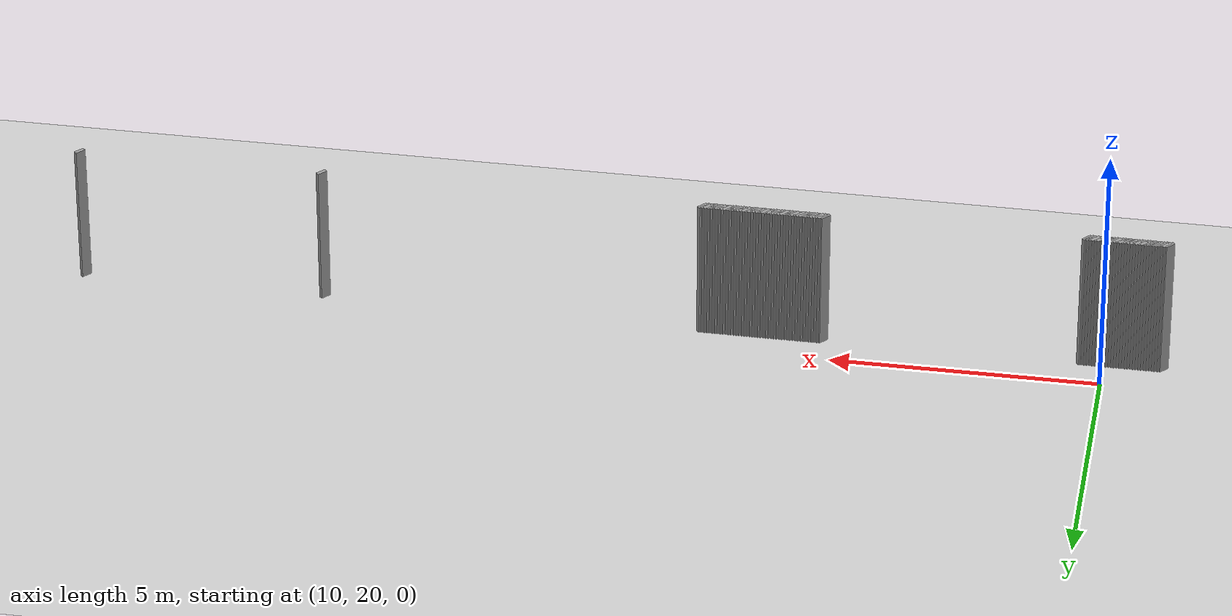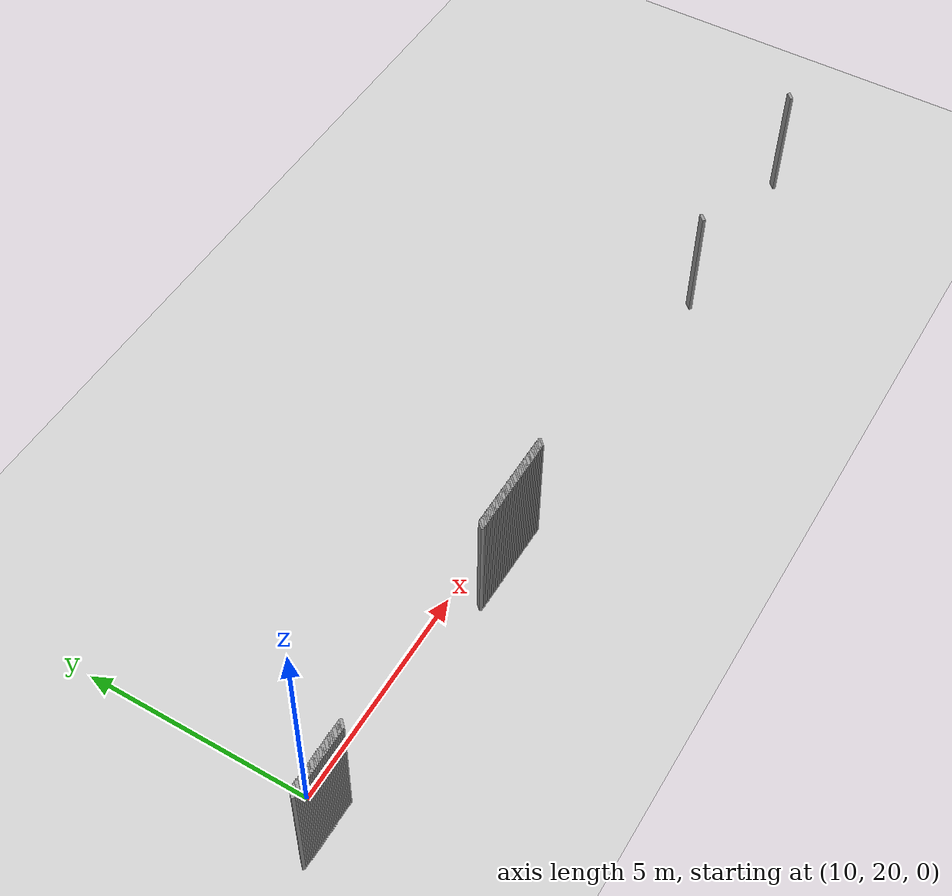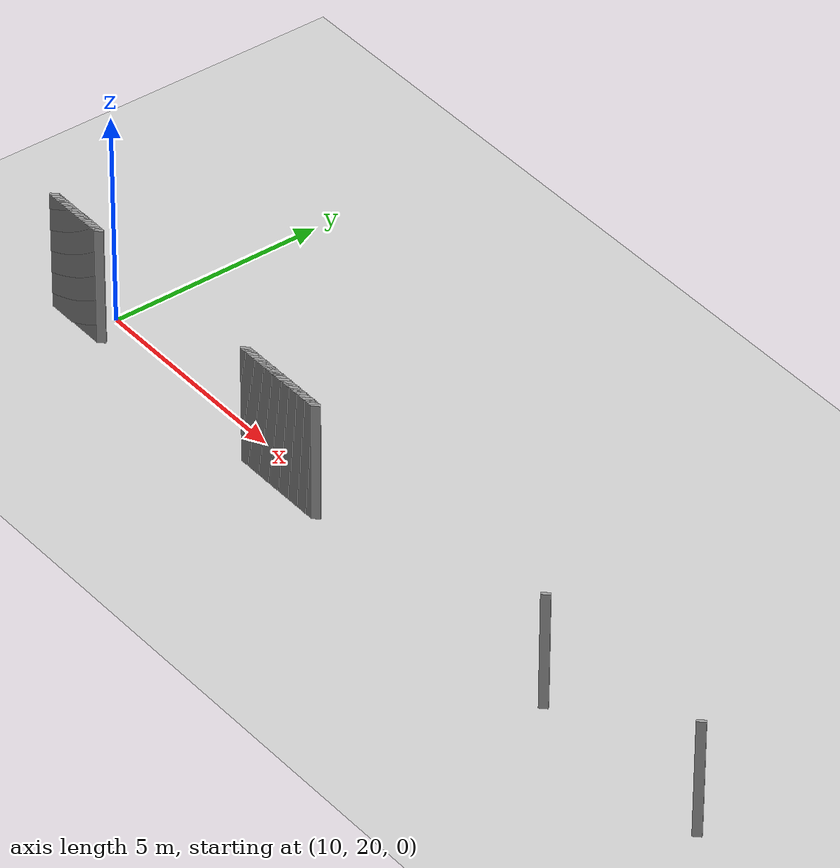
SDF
<sdf version="1.5">
 <world name="default">
  <include><uri>model://ground_plane</uri></include>
  <include><uri>model://sun</uri></include>
  <model name="grey_wall_317">
   <static>1</static>
   <link name="link">
    <pose>15.2 19.4  1.4 0 0 -0.785398163397</pose>
    <collision name="collision"><geometry><box><size>0.0707106781187 .2  2.8</size></box></geometry></collision>
    <visual name="visual">
     <cast_shadows>0</cast_shadows>
     <geometry><box><size>0.0707106781187 .2  2.8</size></box></geometry>
     <material>
      <script>
       <uri>model://grey_wall/materials/scripts</uri>
       <uri>model://grey_wall/materials/textures</uri>
       <name>vrc/grey_wall</name>
      </script>
     </material>
    </visual>
   </link>
  </model>
  <model name="grey_wall_318">
   <static>1</static>
   <link name="link">
    <pose>15.25 19.4  1.4 0 0 -0.785398163397</pose>
    <collision name="collision"><geometry><box><size>0.0707106781187 .2  2.8</size></box></geometry></collision>
    <visual name="visual">
     <cast_shadows>0</cast_shadows>
     <geometry><box><size>0.0707106781187 .2  2.8</size></box></geometry>
     <material>
      <script>
       <uri>model://grey_wall/materials/scripts</uri>
       <uri>model://grey_wall/materials/textures</uri>
       <name>vrc/grey_wall</name>
      </script>
     </material>
    </visual>
   </link>
  </model>
  <model name="grey_wall_319">
   <static>1</static>
   <link name="link">
    <pose>15.3 19.4  1.4 0 0 -0.785398163397</pose>
    <collision name="collision"><geometry><box><size>0.0707106781187 .2  2.8</size></box></geometry></collision>
    <visual name="visual">
     <cast_shadows>0</cast_shadows>
     <geometry><box><size>0.0707106781187 .2  2.8</size></box></geometry>
     <material>
      <script>
       <uri>model://grey_wall/materials/scripts</uri>
       <uri>model://grey_wall/materials/textures</uri>
       <name>vrc/grey_wall</name>
      </script>
     </material>
    </visual>
   </link>
  </model>
  <model name="grey_wall_320">
   <static>1</static>
   <link name="link">
    <pose>15.35 19.4  1.4 0 0 -0.785398163397</pose>
    <collision name="collision"><geometry><box><size>0.0707106781187 .2  2.8</size></box></geometry></collision>
    <visual name="visual">
     <cast_shadows>0</cast_shadows>
     <geometry><box><size>0.0707106781187 .2  2.8</size></box></geometry>
     <material>
      <script>
       <uri>model://grey_wall/materials/scripts</uri>
       <uri>model://grey_wall/materials/textures</uri>
       <name>vrc/grey_wall</name>
      </script>
     </material>
    </visual>
   </link>
  </model>
  <model name="grey_wall_321">
   <static>1</static>
   <link name="link">
    <pose>15.4 19.4  1.4 0 0 -0.785398163397</pose>
    <collision name="collision"><geometry><box><size>0.0707106781187 .2  2.8</size></box></geometry></collision>
    <visual name="visual">
     <cast_shadows>0</cast_shadows>
     <geometry><box><size>0.0707106781187 .2  2.8</size></box></geometry>
     <material>
      <script>
       <uri>model://grey_wall/materials/scripts</uri>
       <uri>model://grey_wall/materials/textures</uri>
       <name>vrc/grey_wall</name>
      </script>
     </material>
    </visual>
   </link>
  </model>
  <model name="grey_wall_322">
   <static>1</static>
   <link name="link">
    <pose>15.45 19.4  1.4 0 0 -0.785398163397</pose>
    <collision name="collision"><geometry><box><size>0.0707106781187 .2  2.8</size></box></geometry></collision>
    <visual name="visual">
     <cast_shadows>0</cast_shadows>
     <geometry><box><size>0.0707106781187 .2  2.8</size></box></geometry>
     <material>
      <script>
       <uri>model://grey_wall/materials/scripts</uri>
       <uri>model://grey_wall/materials/textures</uri>
       <name>vrc/grey_wall</name>
      </script>
     </material>
    </visual>
   </link>
  </model>
  <model name="grey_wall_323">
   <static>1</static>
   <link name="link">
    <pose>15.5 19.4  1.4 0 0 -0.785398163397</pose>
    <collision name="collision"><geometry><box><size>0.0707106781187 .2  2.8</size></box></geometry></collision>
    <visual name="visual">
     <cast_shadows>0</cast_shadows>
     <geometry><box><size>0.0707106781187 .2  2.8</size></box></geometry>
     <material>
      <script>
       <uri>model://grey_wall/materials/scripts</uri>
       <uri>model://grey_wall/materials/textures</uri>
       <name>vrc/grey_wall</name>
      </script>
     </material>
    </visual>
   </link>
  </model>
  <model name="grey_wall_324">
   <static>1</static>
   <link name="link">
    <pose>15.55 19.4  1.4 0 0 -0.785398163397</pose>
    <collision name="collision"><geometry><box><size>0.0707106781187 .2  2.8</size></box></geometry></collision>
    <visual name="visual">
     <cast_shadows>0</cast_shadows>
     <geometry><box><size>0.0707106781187 .2  2.8</size></box></geometry>
     <material>
      <script>
       <uri>model://grey_wall/materials/scripts</uri>
       <uri>model://grey_wall/materials/textures</uri>
       <name>vrc/grey_wall</name>
      </script>
     </material>
    </visual>
   </link>
  </model>
  <model name="grey_wall_325">
   <static>1</static>
   <link name="link">
    <pose>15.6 19.4  1.4 0 0 -0.785398163397</pose>
    <collision name="collision"><geometry><box><size>0.0707106781187 .2  2.8</size></box></geometry></collision>
    <visual name="visual">
     <cast_shadows>0</cast_shadows>
     <geometry><box><size>0.0707106781187 .2  2.8</size></box></geometry>
     <material>
      <script>
       <uri>model://grey_wall/materials/scripts</uri>
       <uri>model://grey_wall/materials/textures</uri>
       <name>vrc/grey_wall</name>
      </script>
     </material>
    </visual>
   </link>
  </model>
  <model name="grey_wall_326">
   <static>1</static>
   <link name="link">
    <pose>15.65 19.4  1.4 0 0 -0.785398163397</pose>
    <collision name="collision"><geometry><box><size>0.0707106781187 .2  2.8</size></box></geometry></collision>
    <visual name="visual">
     <cast_shadows>0</cast_shadows>
     <geometry><box><size>0.0707106781187 .2  2.8</size></box></geometry>
     <material>
      <script>
       <uri>model://grey_wall/materials/scripts</uri>
       <uri>model://grey_wall/materials/textures</uri>
       <name>vrc/grey_wall</name>
      </script>
     </material>
    </visual>
   </link>
  </model>
  <model name="grey_wall_327">
   <static>1</static>
   <link name="link">
    <pose>15.7 19.4  1.4 0 0 -0.785398163397</pose>
    <collision name="collision"><geometry><box><size>0.0707106781187 .2  2.8</size></box></geometry></collision>
    <visual name="visual">
     <cast_shadows>0</cast_shadows>
     <geometry><box><size>0.0707106781187 .2  2.8</size></box></geometry>
     <material>
      <script>
       <uri>model://grey_wall/materials/scripts</uri>
       <uri>model://grey_wall/materials/textures</uri>
       <name>vrc/grey_wall</name>
      </script>
     </material>
    </visual>
   </link>
  </model>
  <model name="grey_wall_328">
   <static>1</static>
   <link name="link">
    <pose>15.75 19.4  1.4 0 0 -0.785398163397</pose>
    <collision name="collision"><geometry><box><size>0.0707106781187 .2  2.8</size></box></geometry></collision>
    <visual name="visual">
     <cast_shadows>0</cast_shadows>
     <geometry><box><size>0.0707106781187 .2  2.8</size></box></geometry>
     <material>
      <script>
       <uri>model://grey_wall/materials/scripts</uri>
       <uri>model://grey_wall/materials/textures</uri>
       <name>vrc/grey_wall</name>
      </script>
     </material>
    </visual>
   </link>
  </model>
  <model name="grey_wall_329">
   <static>1</static>
   <link name="link">
    <pose>15.8 19.4  1.4 0 0 -0.785398163397</pose>
    <collision name="collision"><geometry><box><size>0.0707106781187 .2  2.8</size></box></geometry></collision>
    <visual name="visual">
     <cast_shadows>0</cast_shadows>
     <geometry><box><size>0.0707106781187 .2  2.8</size></box></geometry>
     <material>
      <script>
       <uri>model://grey_wall/materials/scripts</uri>
       <uri>model://grey_wall/materials/textures</uri>
       <name>vrc/grey_wall</name>
      </script>
     </material>
    </visual>
   </link>
  </model>
  <model name="grey_wall_330">
   <static>1</static>
   <link name="link">
    <pose>15.85 19.4  1.4 0 0 -0.785398163397</pose>
    <collision name="collision"><geometry><box><size>0.0707106781187 .2  2.8</size></box></geometry></collision>
    <visual name="visual">
     <cast_shadows>0</cast_shadows>
     <geometry><box><size>0.0707106781187 .2  2.8</size></box></geometry>
     <material>
      <script>
       <uri>model://grey_wall/materials/scripts</uri>
       <uri>model://grey_wall/materials/textures</uri>
       <name>vrc/grey_wall</name>
      </script>
     </material>
    </visual>
   </link>
  </model>
  <model name="grey_wall_331">
   <static>1</static>
   <link name="link">
    <pose>15.9 19.4  1.4 0 0 -0.785398163397</pose>
    <collision name="collision"><geometry><box><size>0.0707106781187 .2  2.8</size></box></geometry></collision>
    <visual name="visual">
     <cast_shadows>0</cast_shadows>
     <geometry><box><size>0.0707106781187 .2  2.8</size></box></geometry>
     <material>
      <script>
       <uri>model://grey_wall/materials/scripts</uri>
       <uri>model://grey_wall/materials/textures</uri>
       <name>vrc/grey_wall</name>
      </script>
     </material>
    </visual>
   </link>
  </model>
  <model name="grey_wall_332">
   <static>1</static>
   <link name="link">
    <pose>15.95 19.4  1.4 0 0 -0.785398163397</pose>
    <collision name="collision"><geometry><box><size>0.0707106781187 .2  2.8</size></box></geometry></collision>
    <visual name="visual">
     <cast_shadows>0</cast_shadows>
     <geometry><box><size>0.0707106781187 .2  2.8</size></box></geometry>
     <material>
      <script>
       <uri>model://grey_wall/materials/scripts</uri>
       <uri>model://grey_wall/materials/textures</uri>
       <name>vrc/grey_wall</name>
      </script>
     </material>
    </visual>
   </link>
  </model>
  <model name="grey_wall_333">
   <static>1</static>
   <link name="link">
    <pose>16.0 19.4  1.4 0 0 -0.785398163397</pose>
    <collision name="collision"><geometry><box><size>0.0707106781187 .2  2.8</size></box></geometry></collision>
    <visual name="visual">
     <cast_shadows>0</cast_shadows>
     <geometry><box><size>0.0707106781187 .2  2.8</size></box></geometry>
     <material>
      <script>
       <uri>model://grey_wall/materials/scripts</uri>
       <uri>model://grey_wall/materials/textures</uri>
       <name>vrc/grey_wall</name>
      </script>
     </material>
    </visual>
   </link>
  </model>
  <model name="grey_wall_334">
   <static>1</static>
   <link name="link">
    <pose>16.05 19.4  1.4 0 0 -0.785398163397</pose>
    <collision name="collision"><geometry><box><size>0.0707106781187 .2  2.8</size></box></geometry></collision>
    <visual name="visual">
     <cast_shadows>0</cast_shadows>
     <geometry><box><size>0.0707106781187 .2  2.8</size></box></geometry>
     <material>
      <script>
       <uri>model://grey_wall/materials/scripts</uri>
       <uri>model://grey_wall/materials/textures</uri>
       <name>vrc/grey_wall</name>
      </script>
     </material>
    </visual>
   </link>
  </model>
  <model name="grey_wall_335">
   <static>1</static>
   <link name="link">
    <pose>16.1 19.4  1.4 0 0 -0.785398163397</pose>
    <collision name="collision"><geometry><box><size>0.0707106781187 .2  2.8</size></box></geometry></collision>
    <visual name="visual">
     <cast_shadows>0</cast_shadows>
     <geometry><box><size>0.0707106781187 .2  2.8</size></box></geometry>
     <material>
      <script>
       <uri>model://grey_wall/materials/scripts</uri>
       <uri>model://grey_wall/materials/textures</uri>
       <name>vrc/grey_wall</name>
      </script>
     </material>
    </visual>
   </link>
  </model>
  <model name="grey_wall_336">
   <static>1</static>
   <link name="link">
    <pose>16.15 19.4  1.4 0 0 -0.785398163397</pose>
    <collision name="collision"><geometry><box><size>0.0707106781187 .2  2.8</size></box></geometry></collision>
    <visual name="visual">
     <cast_shadows>0</cast_shadows>
     <geometry><box><size>0.0707106781187 .2  2.8</size></box></geometry>
     <material>
      <script>
       <uri>model://grey_wall/materials/scripts</uri>
       <uri>model://grey_wall/materials/textures</uri>
       <name>vrc/grey_wall</name>
      </script>
     </material>
    </visual>
   </link>
  </model>
  <model name="grey_wall_337">
   <static>1</static>
   <link name="link">
    <pose>16.2 19.4  1.4 0 0 -0.785398163397</pose>
    <collision name="collision"><geometry><box><size>0.0707106781187 .2  2.8</size></box></geometry></collision>
    <visual name="visual">
     <cast_shadows>0</cast_shadows>
     <geometry><box><size>0.0707106781187 .2  2.8</size></box></geometry>
     <material>
      <script>
       <uri>model://grey_wall/materials/scripts</uri>
       <uri>model://grey_wall/materials/textures</uri>
       <name>vrc/grey_wall</name>
      </script>
     </material>
    </visual>
   </link>
  </model>
  <model name="grey_wall_338">
   <static>1</static>
   <link name="link">
    <pose>16.25 19.4  1.4 0 0 -0.785398163397</pose>
    <collision name="collision"><geometry><box><size>0.0707106781187 .2  2.8</size></box></geometry></collision>
    <visual name="visual">
     <cast_shadows>0</cast_shadows>
     <geometry><box><size>0.0707106781187 .2  2.8</size></box></geometry>
     <material>
      <script>
       <uri>model://grey_wall/materials/scripts</uri>
       <uri>model://grey_wall/materials/textures</uri>
       <name>vrc/grey_wall</name>
      </script>
     </material>
    </visual>
   </link>
  </model>
  <model name="grey_wall_339">
   <static>1</static>
   <link name="link">
    <pose>16.3 19.4  1.4 0 0 -0.785398163397</pose>
    <collision name="collision"><geometry><box><size>0.0707106781187 .2  2.8</size></box></geometry></collision>
    <visual name="visual">
     <cast_shadows>0</cast_shadows>
     <geometry><box><size>0.0707106781187 .2  2.8</size></box></geometry>
     <material>
      <script>
       <uri>model://grey_wall/materials/scripts</uri>
       <uri>model://grey_wall/materials/textures</uri>
       <name>vrc/grey_wall</name>
      </script>
     </material>
    </visual>
   </link>
  </model>
  <model name="grey_wall_340">
   <static>1</static>
   <link name="link">
    <pose>16.35 19.4  1.4 0 0 -0.785398163397</pose>
    <collision name="collision"><geometry><box><size>0.0707106781187 .2  2.8</size></box></geometry></collision>
    <visual name="visual">
     <cast_shadows>0</cast_shadows>
     <geometry><box><size>0.0707106781187 .2  2.8</size></box></geometry>
     <material>
      <script>
       <uri>model://grey_wall/materials/scripts</uri>
       <uri>model://grey_wall/materials/textures</uri>
       <name>vrc/grey_wall</name>
      </script>
     </material>
    </visual>
   </link>
  </model>
  <model name="grey_wall_341">
   <static>1</static>
   <link name="link">
    <pose>16.4 19.4  1.4 0 0 -0.785398163397</pose>
    <collision name="collision"><geometry><box><size>0.0707106781187 .2  2.8</size></box></geometry></collision>
    <visual name="visual">
     <cast_shadows>0</cast_shadows>
     <geometry><box><size>0.0707106781187 .2  2.8</size></box></geometry>
     <material>
      <script>
       <uri>model://grey_wall/materials/scripts</uri>
       <uri>model://grey_wall/materials/textures</uri>
       <name>vrc/grey_wall</name>
      </script>
     </material>
    </visual>
   </link>
  </model>
  <model name="grey_wall_342">
   <static>1</static>
   <link name="link">
    <pose>16.45 19.4  1.4 0 0 -0.785398163397</pose>
    <collision name="collision"><geometry><box><size>0.0707106781187 .2  2.8</size></box></geometry></collision>
    <visual name="visual">
     <cast_shadows>0</cast_shadows>
     <geometry><box><size>0.0707106781187 .2  2.8</size></box></geometry>
     <material>
      <script>
       <uri>model://grey_wall/materials/scripts</uri>
       <uri>model://grey_wall/materials/textures</uri>
       <name>vrc/grey_wall</name>
      </script>
     </material>
    </visual>
   </link>
  </model>
  <model name="grey_wall_343">
   <static>1</static>
   <link name="link">
    <pose>16.5 19.4  1.4 0 0 -0.785398163397</pose>
    <collision name="collision"><geometry><box><size>0.0707106781187 .2  2.8</size></box></geometry></collision>
    <visual name="visual">
     <cast_shadows>0</cast_shadows>
     <geometry><box><size>0.0707106781187 .2  2.8</size></box></geometry>
     <material>
      <script>
       <uri>model://grey_wall/materials/scripts</uri>
       <uri>model://grey_wall/materials/textures</uri>
       <name>vrc/grey_wall</name>
      </script>
     </material>
    </visual>
   </link>
  </model>
  <model name="grey_wall_344">
   <static>1</static>
   <link name="link">
    <pose>16.55 19.4  1.4 0 0 -0.785398163397</pose>
    <collision name="collision"><geometry><box><size>0.0707106781187 .2  2.8</size></box></geometry></collision>
    <visual name="visual">
     <cast_shadows>0</cast_shadows>
     <geometry><box><size>0.0707106781187 .2  2.8</size></box></geometry>
     <material>
      <script>
       <uri>model://grey_wall/materials/scripts</uri>
       <uri>model://grey_wall/materials/textures</uri>
       <name>vrc/grey_wall</name>
      </script>
     </material>
    </visual>
   </link>
  </model>
  <model name="grey_wall_345">
   <static>1</static>
   <link name="link">
    <pose>16.6 19.4  1.4 0 0 -0.785398163397</pose>
    <collision name="collision"><geometry><box><size>0.0707106781187 .2  2.8</size></box></geometry></collision>
    <visual name="visual">
     <cast_shadows>0</cast_shadows>
     <geometry><box><size>0.0707106781187 .2  2.8</size></box></geometry>
     <material>
      <script>
       <uri>model://grey_wall/materials/scripts</uri>
       <uri>model://grey_wall/materials/textures</uri>
       <name>vrc/grey_wall</name>
      </script>
     </material>
    </visual>
   </link>
  </model>
  <model name="grey_wall_346">
   <static>1</static>
   <link name="link">
    <pose>16.65 19.4  1.4 0 0 -0.785398163397</pose>
    <collision name="collision"><geometry><box><size>0.0707106781187 .2  2.8</size></box></geometry></collision>
    <visual name="visual">
     <cast_shadows>0</cast_shadows>
     <geometry><box><size>0.0707106781187 .2  2.8</size></box></geometry>
     <material>
      <script>
       <uri>model://grey_wall/materials/scripts</uri>
       <uri>model://grey_wall/materials/textures</uri>
       <name>vrc/grey_wall</name>
      </script>
     </material>
    </visual>
   </link>
  </model>
  <model name="grey_wall_347">
   <static>1</static>
   <link name="link">
    <pose>16.7 19.4  1.4 0 0 -0.785398163397</pose>
    <collision name="collision"><geometry><box><size>0.0707106781187 .2  2.8</size></box></geometry></collision>
    <visual name="visual">
     <cast_shadows>0</cast_shadows>
     <geometry><box><size>0.0707106781187 .2  2.8</size></box></geometry>
     <material>
      <script>
       <uri>model://grey_wall/materials/scripts</uri>
       <uri>model://grey_wall/materials/textures</uri>
       <name>vrc/grey_wall</name>
      </script>
     </material>
    </visual>
   </link>
  </model>
  <model name="grey_wall_348">
   <static>1</static>
   <link name="link">
    <pose>16.75 19.4  1.4 0 0 -0.785398163397</pose>
    <collision name="collision"><geometry><box><size>0.0707106781187 .2  2.8</size></box></geometry></collision>
    <visual name="visual">
     <cast_shadows>0</cast_shadows>
     <geometry><box><size>0.0707106781187 .2  2.8</size></box></geometry>
     <material>
      <script>
       <uri>model://grey_wall/materials/scripts</uri>
       <uri>model://grey_wall/materials/textures</uri>
       <name>vrc/grey_wall</name>
      </script>
     </material>
    </visual>
   </link>
  </model>
  <model name="grey_wall_349">
   <static>1</static>
   <link name="link">
    <pose>16.8 19.4  1.4 0 0 -0.785398163397</pose>
    <collision name="collision"><geometry><box><size>0.0707106781187 .2  2.8</size></box></geometry></collision>
    <visual name="visual">
     <cast_shadows>0</cast_shadows>
     <geometry><box><size>0.0707106781187 .2  2.8</size></box></geometry>
     <material>
      <script>
       <uri>model://grey_wall/materials/scripts</uri>
       <uri>model://grey_wall/materials/textures</uri>
       <name>vrc/grey_wall</name>
      </script>
     </material>
    </visual>
   </link>
  </model>
  <model name="grey_wall_350">
   <static>1</static>
   <link name="link">
    <pose>16.85 19.4  1.4 0 0 -0.785398163397</pose>
    <collision name="collision"><geometry><box><size>0.0707106781187 .2  2.8</size></box></geometry></collision>
    <visual name="visual">
     <cast_shadows>0</cast_shadows>
     <geometry><box><size>0.0707106781187 .2  2.8</size></box></geometry>
     <material>
      <script>
       <uri>model://grey_wall/materials/scripts</uri>
       <uri>model://grey_wall/materials/textures</uri>
       <name>vrc/grey_wall</name>
      </script>
     </material>
    </visual>
   </link>
  </model>
  <model name="grey_wall_351">
   <static>1</static>
   <link name="link">
    <pose>16.9 19.4  1.4 0 0 -0.785398163397</pose>
    <collision name="collision"><geometry><box><size>0.0707106781187 .2  2.8</size></box></geometry></collision>
    <visual name="visual">
     <cast_shadows>0</cast_shadows>
     <geometry><box><size>0.0707106781187 .2  2.8</size></box></geometry>
     <material>
      <script>
       <uri>model://grey_wall/materials/scripts</uri>
       <uri>model://grey_wall/materials/textures</uri>
       <name>vrc/grey_wall</name>
      </script>
     </material>
    </visual>
   </link>
  </model>
  <model name="grey_wall_352">
   <static>1</static>
   <link name="link">
    <pose>16.95 19.4  1.4 0 0 -0.785398163397</pose>
    <collision name="collision"><geometry><box><size>0.0707106781187 .2  2.8</size></box></geometry></collision>
    <visual name="visual">
     <cast_shadows>0</cast_shadows>
     <geometry><box><size>0.0707106781187 .2  2.8</size></box></geometry>
     <material>
      <script>
       <uri>model://grey_wall/materials/scripts</uri>
       <uri>model://grey_wall/materials/textures</uri>
       <name>vrc/grey_wall</name>
      </script>
     </material>
    </visual>
   </link>
  </model>
  <model name="grey_wall_353">
   <static>1</static>
   <link name="link">
    <pose>17.0 19.4  1.4 0 0 -0.785398163397</pose>
    <collision name="collision"><geometry><box><size>0.0707106781187 .2  2.8</size></box></geometry></collision>
    <visual name="visual">
     <cast_shadows>0</cast_shadows>
     <geometry><box><size>0.0707106781187 .2  2.8</size></box></geometry>
     <material>
      <script>
       <uri>model://grey_wall/materials/scripts</uri>
       <uri>model://grey_wall/materials/textures</uri>
       <name>vrc/grey_wall</name>
      </script>
     </material>
    </visual>
   </link>
  </model>
  <model name="grey_wall_354">
   <static>1</static>
   <link name="link">
    <pose>17.05 19.4  1.4 0 0 -0.785398163397</pose>
    <collision name="collision"><geometry><box><size>0.0707106781187 .2  2.8</size></box></geometry></collision>
    <visual name="visual">
     <cast_shadows>0</cast_shadows>
     <geometry><box><size>0.0707106781187 .2  2.8</size></box></geometry>
     <material>
      <script>
       <uri>model://grey_wall/materials/scripts</uri>
       <uri>model://grey_wall/materials/textures</uri>
       <name>vrc/grey_wall</name>
      </script>
     </material>
    </visual>
   </link>
  </model>
  <model name="grey_wall_355">
   <static>1</static>
   <link name="link">
    <pose>17.1 19.4  1.4 0 0 -0.785398163397</pose>
    <collision name="collision"><geometry><box><size>0.0707106781187 .2  2.8</size></box></geometry></collision>
    <visual name="visual">
     <cast_shadows>0</cast_shadows>
     <geometry><box><size>0.0707106781187 .2  2.8</size></box></geometry>
     <material>
      <script>
       <uri>model://grey_wall/materials/scripts</uri>
       <uri>model://grey_wall/materials/textures</uri>
       <name>vrc/grey_wall</name>
      </script>
     </material>
    </visual>
   </link>
  </model>
  <model name="grey_wall_356">
   <static>1</static>
   <link name="link">
    <pose>17.15 19.4  1.4 0 0 -0.785398163397</pose>
    <collision name="collision"><geometry><box><size>0.0707106781187 .2  2.8</size></box></geometry></collision>
    <visual name="visual">
     <cast_shadows>0</cast_shadows>
     <geometry><box><size>0.0707106781187 .2  2.8</size></box></geometry>
     <material>
      <script>
       <uri>model://grey_wall/materials/scripts</uri>
       <uri>model://grey_wall/materials/textures</uri>
       <name>vrc/grey_wall</name>
      </script>
     </material>
    </visual>
   </link>
  </model>
  <model name="grey_wall_357">
   <static>1</static>
   <link name="link">
    <pose>17.2 19.4  1.4 0 0 -0.785398163397</pose>
    <collision name="collision"><geometry><box><size>0.0707106781187 .2  2.8</size></box></geometry></collision>
    <visual name="visual">
     <cast_shadows>0</cast_shadows>
     <geometry><box><size>0.0707106781187 .2  2.8</size></box></geometry>
     <material>
      <script>
       <uri>model://grey_wall/materials/scripts</uri>
       <uri>model://grey_wall/materials/textures</uri>
       <name>vrc/grey_wall</name>
      </script>
     </material>
    </visual>
   </link>
  </model>
  <model name="grey_wall_358">
   <static>1</static>
   <link name="link">
    <pose>17.25 19.4  1.4 0 0 -0.785398163397</pose>
    <collision name="collision"><geometry><box><size>0.0707106781187 .2  2.8</size></box></geometry></collision>
    <visual name="visual">
     <cast_shadows>0</cast_shadows>
     <geometry><box><size>0.0707106781187 .2  2.8</size></box></geometry>
     <material>
      <script>
       <uri>model://grey_wall/materials/scripts</uri>
       <uri>model://grey_wall/materials/textures</uri>
       <name>vrc/grey_wall</name>
      </script>
     </material>
    </visual>
   </link>
  </model>
  <model name="grey_wall_359">
   <static>1</static>
   <link name="link">
    <pose>17.3 19.4  1.4 0 0 -0.785398163397</pose>
    <collision name="collision"><geometry><box><size>0.0707106781187 .2  2.8</size></box></geometry></collision>
    <visual name="visual">
     <cast_shadows>0</cast_shadows>
     <geometry><box><size>0.0707106781187 .2  2.8</size></box></geometry>
     <material>
      <script>
       <uri>model://grey_wall/materials/scripts</uri>
       <uri>model://grey_wall/materials/textures</uri>
       <name>vrc/grey_wall</name>
      </script>
     </material>
    </visual>
   </link>
  </model>
  <model name="grey_wall_360">
   <static>1</static>
   <link name="link">
    <pose>17.35 19.4  1.4 0 0 -0.785398163397</pose>
    <collision name="collision"><geometry><box><size>0.0707106781187 .2  2.8</size></box></geometry></collision>
    <visual name="visual">
     <cast_shadows>0</cast_shadows>
     <geometry><box><size>0.0707106781187 .2  2.8</size></box></geometry>
     <material>
      <script>
       <uri>model://grey_wall/materials/scripts</uri>
       <uri>model://grey_wall/materials/textures</uri>
       <name>vrc/grey_wall</name>
      </script>
     </material>
    </visual>
   </link>
  </model>
  <model name="grey_wall_361">
   <static>1</static>
   <link name="link">
    <pose>17.4 19.4  1.4 0 0 -0.785398163397</pose>
    <collision name="collision"><geometry><box><size>0.0707106781187 .2  2.8</size></box></geometry></collision>
    <visual name="visual">
     <cast_shadows>0</cast_shadows>
     <geometry><box><size>0.0707106781187 .2  2.8</size></box></geometry>
     <material>
      <script>
       <uri>model://grey_wall/materials/scripts</uri>
       <uri>model://grey_wall/materials/textures</uri>
       <name>vrc/grey_wall</name>
      </script>
     </material>
    </visual>
   </link>
  </model>
  <model name="grey_wall_362">
   <static>1</static>
   <link name="link">
    <pose>17.45 19.4  1.4 0 0 -0.785398163397</pose>
    <collision name="collision"><geometry><box><size>0.0707106781187 .2  2.8</size></box></geometry></collision>
    <visual name="visual">
     <cast_shadows>0</cast_shadows>
     <geometry><box><size>0.0707106781187 .2  2.8</size></box></geometry>
     <material>
      <script>
       <uri>model://grey_wall/materials/scripts</uri>
       <uri>model://grey_wall/materials/textures</uri>
       <name>vrc/grey_wall</name>
      </script>
     </material>
    </visual>
   </link>
  </model>
  <model name="grey_wall_363">
   <static>1</static>
   <link name="link">
    <pose>24.55 19.4  1.4 0 0 -0.785398163397</pose>
    <collision name="collision"><geometry><box><size>0.0707106781187 .2  2.8</size></box></geometry></collision>
    <visual name="visual">
     <cast_shadows>0</cast_shadows>
     <geometry><box><size>0.0707106781187 .2  2.8</size></box></geometry>
     <material>
      <script>
       <uri>model://grey_wall/materials/scripts</uri>
       <uri>model://grey_wall/materials/textures</uri>
       <name>vrc/grey_wall</name>
      </script>
     </material>
    </visual>
   </link>
  </model>
  <model name="grey_wall_364">
   <static>1</static>
   <link name="link">
    <pose>29.1 19.4  1.4 0 0 -0.785398163397</pose>
    <collision name="collision"><geometry><box><size>0.0707106781187 .2  2.8</size></box></geometry></collision>
    <visual name="visual">
     <cast_shadows>0</cast_shadows>
     <geometry><box><size>0.0707106781187 .2  2.8</size></box></geometry>
     <material>
      <script>
       <uri>model://grey_wall/materials/scripts</uri>
       <uri>model://grey_wall/materials/textures</uri>
       <name>vrc/grey_wall</name>
      </script>
     </material>
    </visual>
   </link>
  </model>
  <model name="grey_wall_365">
   <static>1</static>
   <link name="link">
    <pose>8.9 19.35  1.4 0 0 -0.785398163397</pose>
    <collision name="collision"><geometry><box><size>0.0707106781187 .2  2.8</size></box></geometry></collision>
    <visual name="visual">
     <cast_shadows>0</cast_shadows>
     <geometry><box><size>0.0707106781187 .2  2.8</size></box></geometry>
     <material>
      <script>
       <uri>model://grey_wall/materials/scripts</uri>
       <uri>model://grey_wall/materials/textures</uri>
       <name>vrc/grey_wall</name>
      </script>
     </material>
    </visual>
   </link>
  </model>
  <model name="grey_wall_366">
   <static>1</static>
   <link name="link">
    <pose>8.95 19.35  1.4 0 0 -0.785398163397</pose>
    <collision name="collision"><geometry><box><size>0.0707106781187 .2  2.8</size></box></geometry></collision>
    <visual name="visual">
     <cast_shadows>0</cast_shadows>
     <geometry><box><size>0.0707106781187 .2  2.8</size></box></geometry>
     <material>
      <script>
       <uri>model://grey_wall/materials/scripts</uri>
       <uri>model://grey_wall/materials/textures</uri>
       <name>vrc/grey_wall</name>
      </script>
     </material>
    </visual>
   </link>
  </model>
  <model name="grey_wall_367">
   <static>1</static>
   <link name="link">
    <pose>9.0 19.35  1.4 0 0 -0.785398163397</pose>
    <collision name="collision"><geometry><box><size>0.0707106781187 .2  2.8</size></box></geometry></collision>
    <visual name="visual">
     <cast_shadows>0</cast_shadows>
     <geometry><box><size>0.0707106781187 .2  2.8</size></box></geometry>
     <material>
      <script>
       <uri>model://grey_wall/materials/scripts</uri>
       <uri>model://grey_wall/materials/textures</uri>
       <name>vrc/grey_wall</name>
      </script>
     </material>
    </visual>
   </link>
  </model>
  <model name="grey_wall_368">
   <static>1</static>
   <link name="link">
    <pose>9.05 19.35  1.4 0 0 -0.785398163397</pose>
    <collision name="collision"><geometry><box><size>0.0707106781187 .2  2.8</size></box></geometry></collision>
    <visual name="visual">
     <cast_shadows>0</cast_shadows>
     <geometry><box><size>0.0707106781187 .2  2.8</size></box></geometry>
     <material>
      <script>
       <uri>model://grey_wall/materials/scripts</uri>
       <uri>model://grey_wall/materials/textures</uri>
       <name>vrc/grey_wall</name>
      </script>
     </material>
    </visual>
   </link>
  </model>
  <model name="grey_wall_369">
   <static>1</static>
   <link name="link">
    <pose>9.1 19.35  1.4 0 0 -0.785398163397</pose>
    <collision name="collision"><geometry><box><size>0.0707106781187 .2  2.8</size></box></geometry></collision>
    <visual name="visual">
     <cast_shadows>0</cast_shadows>
     <geometry><box><size>0.0707106781187 .2  2.8</size></box></geometry>
     <material>
      <script>
       <uri>model://grey_wall/materials/scripts</uri>
       <uri>model://grey_wall/materials/textures</uri>
       <name>vrc/grey_wall</name>
      </script>
     </material>
    </visual>
   </link>
  </model>
  <model name="grey_wall_370">
   <static>1</static>
   <link name="link">
    <pose>9.15 19.35  1.4 0 0 -0.785398163397</pose>
    <collision name="collision"><geometry><box><size>0.0707106781187 .2  2.8</size></box></geometry></collision>
    <visual name="visual">
     <cast_shadows>0</cast_shadows>
     <geometry><box><size>0.0707106781187 .2  2.8</size></box></geometry>
     <material>
      <script>
       <uri>model://grey_wall/materials/scripts</uri>
       <uri>model://grey_wall/materials/textures</uri>
       <name>vrc/grey_wall</name>
      </script>
     </material>
    </visual>
   </link>
  </model>
  <model name="grey_wall_371">
   <static>1</static>
   <link name="link">
    <pose>9.2 19.35  1.4 0 0 -0.785398163397</pose>
    <collision name="collision"><geometry><box><size>0.0707106781187 .2  2.8</size></box></geometry></collision>
    <visual name="visual">
     <cast_shadows>0</cast_shadows>
     <geometry><box><size>0.0707106781187 .2  2.8</size></box></geometry>
     <material>
      <script>
       <uri>model://grey_wall/materials/scripts</uri>
       <uri>model://grey_wall/materials/textures</uri>
       <name>vrc/grey_wall</name>
      </script>
     </material>
    </visual>
   </link>
  </model>
  <model name="grey_wall_372">
   <static>1</static>
   <link name="link">
    <pose>9.25 19.35  1.4 0 0 -0.785398163397</pose>
    <collision name="collision"><geometry><box><size>0.0707106781187 .2  2.8</size></box></geometry></collision>
    <visual name="visual">
     <cast_shadows>0</cast_shadows>
     <geometry><box><size>0.0707106781187 .2  2.8</size></box></geometry>
     <material>
      <script>
       <uri>model://grey_wall/materials/scripts</uri>
       <uri>model://grey_wall/materials/textures</uri>
       <name>vrc/grey_wall</name>
      </script>
     </material>
    </visual>
   </link>
  </model>
  <model name="grey_wall_373">
   <static>1</static>
   <link name="link">
    <pose>9.3 19.35  1.4 0 0 -0.785398163397</pose>
    <collision name="collision"><geometry><box><size>0.0707106781187 .2  2.8</size></box></geometry></collision>
    <visual name="visual">
     <cast_shadows>0</cast_shadows>
     <geometry><box><size>0.0707106781187 .2  2.8</size></box></geometry>
     <material>
      <script>
       <uri>model://grey_wall/materials/scripts</uri>
       <uri>model://grey_wall/materials/textures</uri>
       <name>vrc/grey_wall</name>
      </script>
     </material>
    </visual>
   </link>
  </model>
  <model name="grey_wall_374">
   <static>1</static>
   <link name="link">
    <pose>9.35 19.35  1.4 0 0 -0.785398163397</pose>
    <collision name="collision"><geometry><box><size>0.0707106781187 .2  2.8</size></box></geometry></collision>
    <visual name="visual">
     <cast_shadows>0</cast_shadows>
     <geometry><box><size>0.0707106781187 .2  2.8</size></box></geometry>
     <material>
      <script>
       <uri>model://grey_wall/materials/scripts</uri>
       <uri>model://grey_wall/materials/textures</uri>
       <name>vrc/grey_wall</name>
      </script>
     </material>
    </visual>
   </link>
  </model>
  <model name="grey_wall_375">
   <static>1</static>
   <link name="link">
    <pose>9.4 19.35  1.4 0 0 -0.785398163397</pose>
    <collision name="collision"><geometry><box><size>0.0707106781187 .2  2.8</size></box></geometry></collision>
    <visual name="visual">
     <cast_shadows>0</cast_shadows>
     <geometry><box><size>0.0707106781187 .2  2.8</size></box></geometry>
     <material>
      <script>
       <uri>model://grey_wall/materials/scripts</uri>
       <uri>model://grey_wall/materials/textures</uri>
       <name>vrc/grey_wall</name>
      </script>
     </material>
    </visual>
   </link>
  </model>
  <model name="grey_wall_376">
   <static>1</static>
   <link name="link">
    <pose>9.45 19.35  1.4 0 0 -0.785398163397</pose>
    <collision name="collision"><geometry><box><size>0.0707106781187 .2  2.8</size></box></geometry></collision>
    <visual name="visual">
     <cast_shadows>0</cast_shadows>
     <geometry><box><size>0.0707106781187 .2  2.8</size></box></geometry>
     <material>
      <script>
       <uri>model://grey_wall/materials/scripts</uri>
       <uri>model://grey_wall/materials/textures</uri>
       <name>vrc/grey_wall</name>
      </script>
     </material>
    </visual>
   </link>
  </model>
  <model name="grey_wall_377">
   <static>1</static>
   <link name="link">
    <pose>9.5 19.35  1.4 0 0 -0.785398163397</pose>
    <collision name="collision"><geometry><box><size>0.0707106781187 .2  2.8</size></box></geometry></collision>
    <visual name="visual">
     <cast_shadows>0</cast_shadows>
     <geometry><box><size>0.0707106781187 .2  2.8</size></box></geometry>
     <material>
      <script>
       <uri>model://grey_wall/materials/scripts</uri>
       <uri>model://grey_wall/materials/textures</uri>
       <name>vrc/grey_wall</name>
      </script>
     </material>
    </visual>
   </link>
  </model>
  <model name="grey_wall_378">
   <static>1</static>
   <link name="link">
    <pose>9.55 19.35  1.4 0 0 -0.785398163397</pose>
    <collision name="collision"><geometry><box><size>0.0707106781187 .2  2.8</size></box></geometry></collision>
    <visual name="visual">
     <cast_shadows>0</cast_shadows>
     <geometry><box><size>0.0707106781187 .2  2.8</size></box></geometry>
     <material>
      <script>
       <uri>model://grey_wall/materials/scripts</uri>
       <uri>model://grey_wall/materials/textures</uri>
       <name>vrc/grey_wall</name>
      </script>
     </material>
    </visual>
   </link>
  </model>
  <model name="grey_wall_379">
   <static>1</static>
   <link name="link">
    <pose>9.6 19.35  1.4 0 0 -0.785398163397</pose>
    <collision name="collision"><geometry><box><size>0.0707106781187 .2  2.8</size></box></geometry></collision>
    <visual name="visual">
     <cast_shadows>0</cast_shadows>
     <geometry><box><size>0.0707106781187 .2  2.8</size></box></geometry>
     <material>
      <script>
       <uri>model://grey_wall/materials/scripts</uri>
       <uri>model://grey_wall/materials/textures</uri>
       <name>vrc/grey_wall</name>
      </script>
     </material>
    </visual>
   </link>
  </model>
  <model name="grey_wall_380">
   <static>1</static>
   <link name="link">
    <pose>9.65 19.35  1.4 0 0 -0.785398163397</pose>
    <collision name="collision"><geometry><box><size>0.0707106781187 .2  2.8</size></box></geometry></collision>
    <visual name="visual">
     <cast_shadows>0</cast_shadows>
     <geometry><box><size>0.0707106781187 .2  2.8</size></box></geometry>
     <material>
      <script>
       <uri>model://grey_wall/materials/scripts</uri>
       <uri>model://grey_wall/materials/textures</uri>
       <name>vrc/grey_wall</name>
      </script>
     </material>
    </visual>
   </link>
  </model>
  <model name="grey_wall_381">
   <static>1</static>
   <link name="link">
    <pose>9.7 19.35  1.4 0 0 -0.785398163397</pose>
    <collision name="collision"><geometry><box><size>0.0707106781187 .2  2.8</size></box></geometry></collision>
    <visual name="visual">
     <cast_shadows>0</cast_shadows>
     <geometry><box><size>0.0707106781187 .2  2.8</size></box></geometry>
     <material>
      <script>
       <uri>model://grey_wall/materials/scripts</uri>
       <uri>model://grey_wall/materials/textures</uri>
       <name>vrc/grey_wall</name>
      </script>
     </material>
    </visual>
   </link>
  </model>
  <model name="grey_wall_382">
   <static>1</static>
   <link name="link">
    <pose>9.75 19.35  1.4 0 0 -0.785398163397</pose>
    <collision name="collision"><geometry><box><size>0.0707106781187 .2  2.8</size></box></geometry></collision>
    <visual name="visual">
     <cast_shadows>0</cast_shadows>
     <geometry><box><size>0.0707106781187 .2  2.8</size></box></geometry>
     <material>
      <script>
       <uri>model://grey_wall/materials/scripts</uri>
       <uri>model://grey_wall/materials/textures</uri>
       <name>vrc/grey_wall</name>
      </script>
     </material>
    </visual>
   </link>
  </model>
  <model name="grey_wall_383">
   <static>1</static>
   <link name="link">
    <pose>9.8 19.35  1.4 0 0 -0.785398163397</pose>
    <collision name="collision"><geometry><box><size>0.0707106781187 .2  2.8</size></box></geometry></collision>
    <visual name="visual">
     <cast_shadows>0</cast_shadows>
     <geometry><box><size>0.0707106781187 .2  2.8</size></box></geometry>
     <material>
      <script>
       <uri>model://grey_wall/materials/scripts</uri>
       <uri>model://grey_wall/materials/textures</uri>
       <name>vrc/grey_wall</name>
      </script>
     </material>
    </visual>
   </link>
  </model>
  <model name="grey_wall_384">
   <static>1</static>
   <link name="link">
    <pose>9.85 19.35  1.4 0 0 -0.785398163397</pose>
    <collision name="collision"><geometry><box><size>0.0707106781187 .2  2.8</size></box></geometry></collision>
    <visual name="visual">
     <cast_shadows>0</cast_shadows>
     <geometry><box><size>0.0707106781187 .2  2.8</size></box></geometry>
     <material>
      <script>
       <uri>model://grey_wall/materials/scripts</uri>
       <uri>model://grey_wall/materials/textures</uri>
       <name>vrc/grey_wall</name>
      </script>
     </material>
    </visual>
   </link>
  </model>
  <model name="grey_wall_385">
   <static>1</static>
   <link name="link">
    <pose>9.9 19.35  1.4 0 0 -0.785398163397</pose>
    <collision name="collision"><geometry><box><size>0.0707106781187 .2  2.8</size></box></geometry></collision>
    <visual name="visual">
     <cast_shadows>0</cast_shadows>
     <geometry><box><size>0.0707106781187 .2  2.8</size></box></geometry>
     <material>
      <script>
       <uri>model://grey_wall/materials/scripts</uri>
       <uri>model://grey_wall/materials/textures</uri>
       <name>vrc/grey_wall</name>
      </script>
     </material>
    </visual>
   </link>
  </model>
  <model name="grey_wall_386">
   <static>1</static>
   <link name="link">
    <pose>9.95 19.35  1.4 0 0 -0.785398163397</pose>
    <collision name="collision"><geometry><box><size>0.0707106781187 .2  2.8</size></box></geometry></collision>
    <visual name="visual">
     <cast_shadows>0</cast_shadows>
     <geometry><box><size>0.0707106781187 .2  2.8</size></box></geometry>
     <material>
      <script>
       <uri>model://grey_wall/materials/scripts</uri>
       <uri>model://grey_wall/materials/textures</uri>
       <name>vrc/grey_wall</name>
      </script>
     </material>
    </visual>
   </link>
  </model>
  <model name="grey_wall_387">
   <static>1</static>
   <link name="link">
    <pose>10.0 19.35  1.4 0 0 -0.785398163397</pose>
    <collision name="collision"><geometry><box><size>0.0707106781187 .2  2.8</size></box></geometry></collision>
    <visual name="visual">
     <cast_shadows>0</cast_shadows>
     <geometry><box><size>0.0707106781187 .2  2.8</size></box></geometry>
     <material>
      <script>
       <uri>model://grey_wall/materials/scripts</uri>
       <uri>model://grey_wall/materials/textures</uri>
       <name>vrc/grey_wall</name>
      </script>
     </material>
    </visual>
   </link>
  </model>
  <model name="grey_wall_388">
   <static>1</static>
   <link name="link">
    <pose>10.05 19.35  1.4 0 0 -0.785398163397</pose>
    <collision name="collision"><geometry><box><size>0.0707106781187 .2  2.8</size></box></geometry></collision>
    <visual name="visual">
     <cast_shadows>0</cast_shadows>
     <geometry><box><size>0.0707106781187 .2  2.8</size></box></geometry>
     <material>
      <script>
       <uri>model://grey_wall/materials/scripts</uri>
       <uri>model://grey_wall/materials/textures</uri>
       <name>vrc/grey_wall</name>
      </script>
     </material>
    </visual>
   </link>
  </model>
  <model name="grey_wall_389">
   <static>1</static>
   <link name="link">
    <pose>10.1 19.35  1.4 0 0 -0.785398163397</pose>
    <collision name="collision"><geometry><box><size>0.0707106781187 .2  2.8</size></box></geometry></collision>
    <visual name="visual">
     <cast_shadows>0</cast_shadows>
     <geometry><box><size>0.0707106781187 .2  2.8</size></box></geometry>
     <material>
      <script>
       <uri>model://grey_wall/materials/scripts</uri>
       <uri>model://grey_wall/materials/textures</uri>
       <name>vrc/grey_wall</name>
      </script>
     </material>
    </visual>
   </link>
  </model>
  <model name="grey_wall_390">
   <static>1</static>
   <link name="link">
    <pose>10.15 19.35  1.4 0 0 -0.785398163397</pose>
    <collision name="collision"><geometry><box><size>0.0707106781187 .2  2.8</size></box></geometry></collision>
    <visual name="visual">
     <cast_shadows>0</cast_shadows>
     <geometry><box><size>0.0707106781187 .2  2.8</size></box></geometry>
     <material>
      <script>
       <uri>model://grey_wall/materials/scripts</uri>
       <uri>model://grey_wall/materials/textures</uri>
       <name>vrc/grey_wall</name>
      </script>
     </material>
    </visual>
   </link>
  </model>
  <model name="grey_wall_391">
   <static>1</static>
   <link name="link">
    <pose>10.2 19.35  1.4 0 0 -0.785398163397</pose>
    <collision name="collision"><geometry><box><size>0.0707106781187 .2  2.8</size></box></geometry></collision>
    <visual name="visual">
     <cast_shadows>0</cast_shadows>
     <geometry><box><size>0.0707106781187 .2  2.8</size></box></geometry>
     <material>
      <script>
       <uri>model://grey_wall/materials/scripts</uri>
       <uri>model://grey_wall/materials/textures</uri>
       <name>vrc/grey_wall</name>
      </script>
     </material>
    </visual>
   </link>
  </model>
  <model name="grey_wall_392">
   <static>1</static>
   <link name="link">
    <pose>10.25 19.35  1.4 0 0 -0.785398163397</pose>
    <collision name="collision"><geometry><box><size>0.0707106781187 .2  2.8</size></box></geometry></collision>
    <visual name="visual">
     <cast_shadows>0</cast_shadows>
     <geometry><box><size>0.0707106781187 .2  2.8</size></box></geometry>
     <material>
      <script>
       <uri>model://grey_wall/materials/scripts</uri>
       <uri>model://grey_wall/materials/textures</uri>
       <name>vrc/grey_wall</name>
      </script>
     </material>
    </visual>
   </link>
  </model>
  <model name="grey_wall_393">
   <static>1</static>
   <link name="link">
    <pose>10.3 19.35  1.4 0 0 -0.785398163397</pose>
    <collision name="collision"><geometry><box><size>0.0707106781187 .2  2.8</size></box></geometry></collision>
    <visual name="visual">
     <cast_shadows>0</cast_shadows>
     <geometry><box><size>0.0707106781187 .2  2.8</size></box></geometry>
     <material>
      <script>
       <uri>model://grey_wall/materials/scripts</uri>
       <uri>model://grey_wall/materials/textures</uri>
       <name>vrc/grey_wall</name>
      </script>
     </material>
    </visual>
   </link>
  </model>
  <model name="grey_wall_394">
   <static>1</static>
   <link name="link">
    <pose>10.35 19.35  1.4 0 0 -0.785398163397</pose>
    <collision name="collision"><geometry><box><size>0.0707106781187 .2  2.8</size></box></geometry></collision>
    <visual name="visual">
     <cast_shadows>0</cast_shadows>
     <geometry><box><size>0.0707106781187 .2  2.8</size></box></geometry>
     <material>
      <script>
       <uri>model://grey_wall/materials/scripts</uri>
       <uri>model://grey_wall/materials/textures</uri>
       <name>vrc/grey_wall</name>
      </script>
     </material>
    </visual>
   </link>
  </model>
  <model name="grey_wall_395">
   <static>1</static>
   <link name="link">
    <pose>10.4 19.35  1.4 0 0 -0.785398163397</pose>
    <collision name="collision"><geometry><box><size>0.0707106781187 .2  2.8</size></box></geometry></collision>
    <visual name="visual">
     <cast_shadows>0</cast_shadows>
     <geometry><box><size>0.0707106781187 .2  2.8</size></box></geometry>
     <material>
      <script>
       <uri>model://grey_wall/materials/scripts</uri>
       <uri>model://grey_wall/materials/textures</uri>
       <name>vrc/grey_wall</name>
      </script>
     </material>
    </visual>
   </link>
  </model>
 </world>
</sdf>
